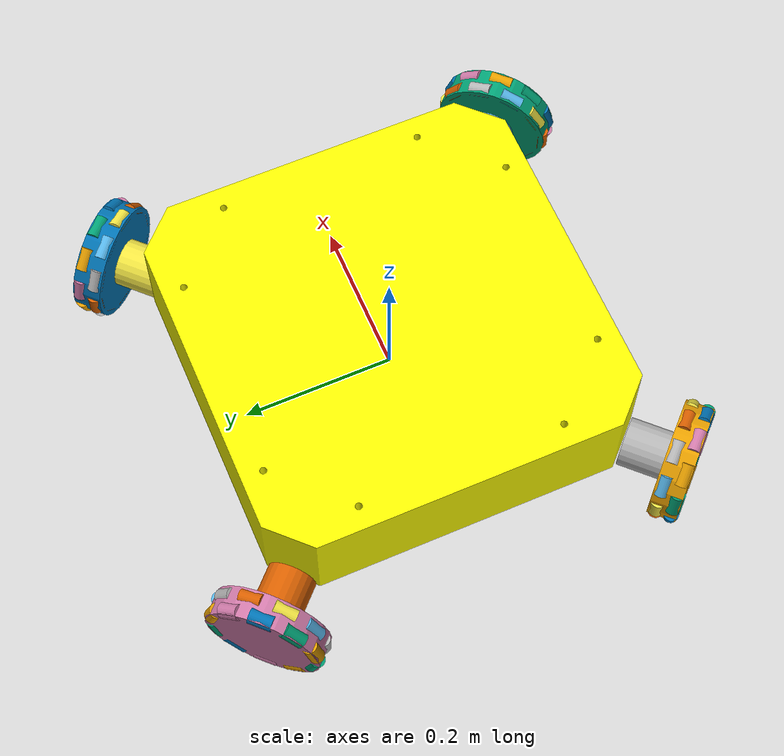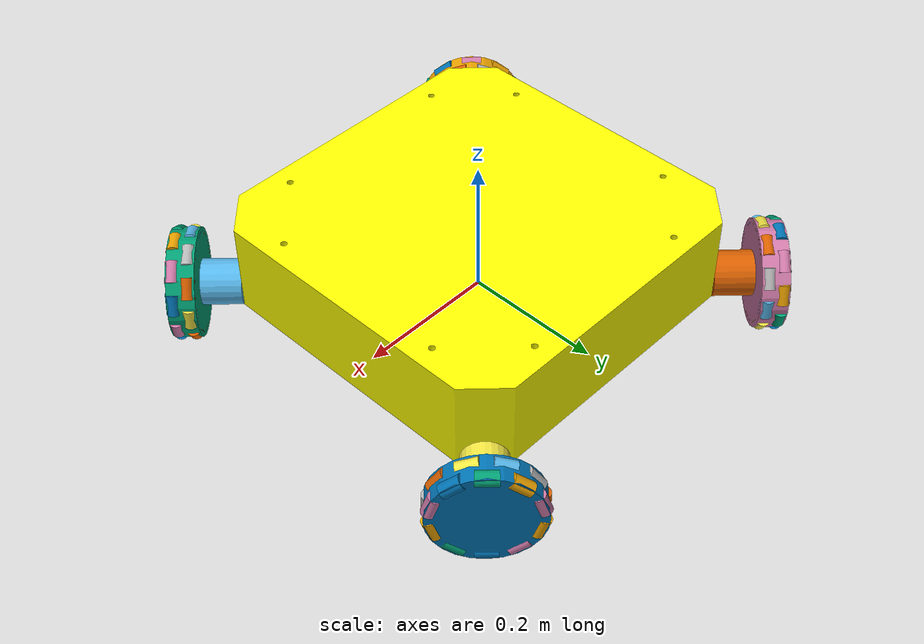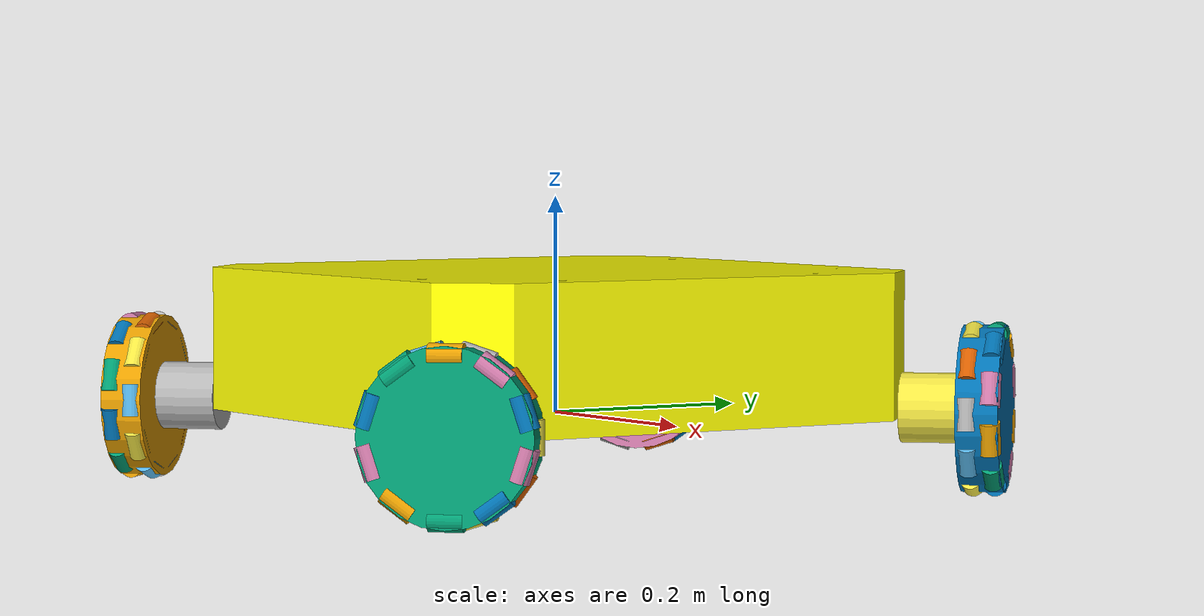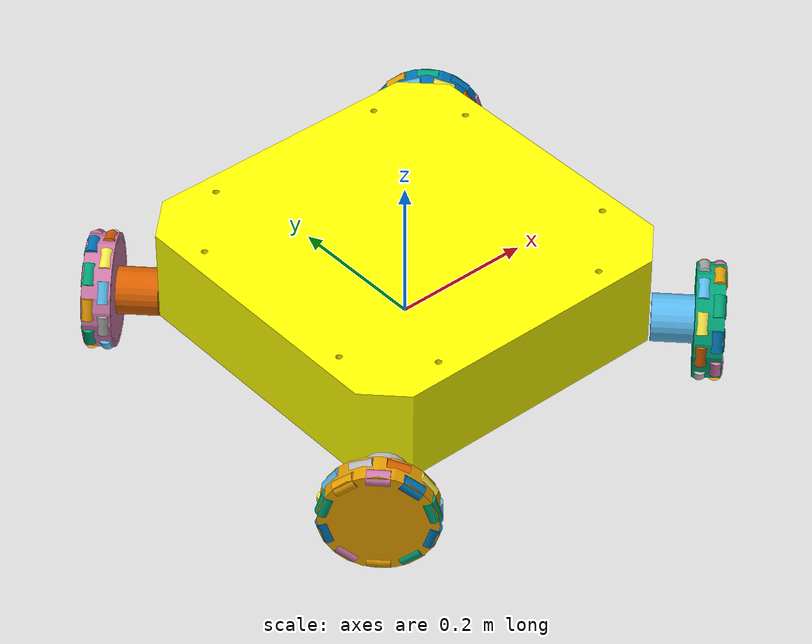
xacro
<?xml version='1.0'?>
<robot name="roam_base_gazebo" xmlns:xacro="http://www.ros.org/wiki/xacro">

  <!-- Robot -->
  <xacro:include filename="$(find roam_base_description)/model/chassis.xacro"/>

  <!-- Control -->
  <xacro:include filename="$(find roam_base_gazebo)/model/ros2_control.xacro"/>

  <!-- Cameras -->

  <!-- Arm -->

</robot>

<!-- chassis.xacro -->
<robot xmlns:xacro="http://www.ros.org/wiki/xacro">
  <xacro:include filename="$(find roam_base_description)/model/connector.xacro"/>

  <!-- World Link -->
  <link name="base_link" />
  <joint name="base_to_chassis" type="fixed">
    <parent link="base_link"/>
    <child link="chassis"/>
    <origin xyz="0 0 0" rpy="0 0 0" />
  </joint>

  <!--Base Footprint-->
  <link name="base_footprint" />
  <joint name="base_to_footprint" type="fixed">
    <parent link="base_footprint"/>
    <child link="base_link"/>
    <origin xyz="0 0 0" rpy="0 0 0" />
  </joint>

  <!-- Chassis -->
  <link name="chassis">
    <visual>
      <origin xyz="0 0 0" rpy="0 0 0" />
      <geometry>
        <mesh filename="file://$(find roam_base_description)/meshes/chassis.stl" />
      </geometry>
      <material name="">
        <color rgba="1 1 0 1" />
      </material>
    </visual>
    <inertial>
      <origin xyz="0 0 0" rpy="0 0 0" />
      <mass value="16.004"/>
      <inertia ixx="0.0001" ixy="0.0" ixz="0.0" iyy="0.0001" iyz="0.0" izz="0.0001"/>
    </inertial>

  </link>

  <gazebo reference="chassis">
    <visual>
      <material>
        <ambient>0.9 0.9 0 1</ambient>
        <diffuse>0.9 0.9 0 1</diffuse>
        <specular>0.9 0.9 0 1</specular>
      </material>
    </visual>
  </gazebo>

  <!--Wheel Rims -->
  <xacro:connector name="1" parent="chassis" xyz="0.228 0.228 0.01" rpy="1.57 0 2.3562"/>  <!--Front Left-->
  <xacro:connector name="2" parent="chassis" xyz="0.228 -0.228 0.01" rpy="1.57 0 0.7838"/> <!--Front Right-->
  <xacro:connector name="3" parent="chassis" xyz="-0.228 -0.228 0.01" rpy="1.57 0 -0.7838"/>  <!--Back Right-->
  <xacro:connector name="4" parent="chassis" xyz="-0.228 0.228 0.01" rpy="1.57 0 -2.3562"/> <!--Back Left -->

</robot>

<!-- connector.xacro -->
<robot xmlns:xacro="http://www.ros.org/wiki/xacro">
<xacro:include filename="$(find roam_base_description)/model/rim.xacro"/>
<xacro:macro name="connector" params="name parent xyz rpy">
  <link name="C${name}">
    <inertial>
      <origin xyz="0 0 0.0286" rpy="0 0 0" />
      <mass value="0.092"/>
      <inertia ixx="4.8343e-05" ixy="0.0" ixz="0.0" iyy="4.8343e-05" iyz="0.0" izz="4.6517e-05"/>
    </inertial>

    <visual>
      <origin xyz="0 0 0.0286" rpy="0 0 0" />
      <geometry>
        <cylinder radius="0.0318" length="0.0572"/>
      </geometry>
    </visual>

  </link>

  <joint name="${parent}_C${name}_joint" type="continuous">
    <parent link="${parent}"/>
    <child link="C${name}"/>
    <origin xyz = "${xyz}" rpy = "${rpy}"/>
    <axis xyz = "0 0 1"/>
  </joint>

  <!-- Wheel Rims -->
  <xacro:rim name="wheel_${name}" parent="C${name}" xyz="0 0 0.0572" rpy="0 0 0"/>

  <gazebo reference="C${name}">
    <visual>
      <material>
        <ambient>0.7 0.7 0.7 1</ambient>
        <diffuse>0.7 0.7 0.7 1</diffuse>
        <specular>0.7 0.7 0.7 1</specular>
      </material>
    </visual>
  </gazebo>

</xacro:macro>
</robot>

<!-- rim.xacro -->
<robot xmlns:xacro="http://www.ros.org/wiki/xacro">
<xacro:include filename="$(find roam_base_description)/model/roller.xacro"/>
<xacro:macro name="rim" params="name parent xyz rpy">
  <link name="rim_${name}_link">
    <inertial>
      <origin xyz="0 0 0.0182" rpy="0 0 0" />
      <mass value="0.20"/>
      <inertia ixx="6.3068e-04" ixy="0.0" ixz="0.0" iyy="6.3068e-04" iyz="0.0" izz="0.0012"/>
    </inertial>

    <visual>
      <origin xyz="0 0 0.0182" rpy="0 0 0" />
      <geometry>
        <cylinder radius="0.076" length="0.0381"/>
      </geometry>
    </visual>

  </link>

  <joint name="${parent}_rim_${name}_joint" type="fixed">
    <parent link="${parent}"/>
    <child link="rim_${name}_link"/>
    <axis xyz = "0 0 1"/>
    <origin xyz = "${xyz}" rpy = "${rpy}"/>
  </joint>

<xacro:roller name="1" parent="${name}"  xyz="0.068 0 0.0091" rpy="1.57 0 0"/>
<xacro:roller name="2" parent="${name}"  xyz="0.0647 0.021 0.0291" rpy="1.57 0 0.3142"/>
<xacro:roller name="3" parent="${name}"  xyz="0.055 0.04 0.0091" rpy="1.57 0 0.6283"/>
<xacro:roller name="4" parent="${name}"  xyz="0.04 0.055 0.0291" rpy="1.57 0 0.9425"/>
<xacro:roller name="5" parent="${name}"  xyz="0.021 0.0647 0.0091" rpy="1.57 0 1.2566"/>
<xacro:roller name="6" parent="${name}"  xyz="0 0.068 0.0291" rpy="1.57 0 1.5708"/>
<xacro:roller name="7" parent="${name}"  xyz="-0.021 0.0647 0.0091" rpy="1.57 0 1.8850"/>
<xacro:roller name="8" parent="${name}"  xyz="-0.04 0.055 0.0291" rpy="1.57 0 2.1991"/>
<xacro:roller name="9" parent="${name}"  xyz="-0.055 0.04 0.0091" rpy="1.57 0 2.5133"/>
<xacro:roller name="10" parent="${name}"  xyz="-0.0647 0.021 0.0291" rpy="1.57 0 2.8274"/>
<xacro:roller name="11" parent="${name}"  xyz="-0.068 0 0.0091" rpy="1.57 0 3.1416"/>
<xacro:roller name="12" parent="${name}"  xyz="-0.0647 -0.021 0.0291" rpy="1.57 0 3.4558"/>
<xacro:roller name="13" parent="${name}"  xyz="-0.055 -0.04 0.0091" rpy="1.57 0 3.7699"/>
<xacro:roller name="14" parent="${name}"  xyz="-0.04 -0.055 0.0291" rpy="1.57 0 4.0841"/>
<xacro:roller name="15" parent="${name}"  xyz="-0.021 -0.0647 0.0091" rpy="1.57 0 4.3982"/>
<xacro:roller name="16" parent="${name}"  xyz="0 -0.068 0.0291" rpy="1.57 0 4.7124"/>
<xacro:roller name="17" parent="${name}"  xyz="0.021 -0.0647 0.0091" rpy="1.57 0 5.0265"/>
<xacro:roller name="18" parent="${name}"  xyz="0.04 -0.055 0.0291" rpy="1.57 0 5.3407"/>
<xacro:roller name="19" parent="${name}"  xyz="0.055 -0.04 0.0091" rpy="1.57 0 5.6549"/>
<xacro:roller name="20" parent="${name}"  xyz="0.0647 -0.021 0.0291" rpy="1.57 0 5.9690"/>

<gazebo reference="rim_${name}_link">
  <visual>
    <material>
      <ambient>0.2 0.2 0.2 1</ambient>
      <diffuse>0.2 0.2 0.2 1</diffuse>
      <specular>0.2 0.2 0.2 1</specular>
    </material>
  </visual>
</gazebo>

</xacro:macro>
</robot>

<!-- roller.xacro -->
<robot xmlns:xacro="http://www.ros.org/wiki/xacro">
  <xacro:macro name="roller" params="name parent xyz rpy">
  <link name="roller_${name}_rim_${parent}_link">
    <inertial>
      <origin xyz="0 0 0" rpy="0 0 0" />
      <inertia ixx="1e-6" ixy="0.0" ixz="0.0" iyy="1e-6" iyz="0.0" izz="1e-6"/>
      <mass value="0.01"/>
    </inertial>
    <visual>
      <origin xyz="0 0 0" rpy="0 0 0" />
      <geometry>
        <cylinder radius="0.01" length="0.03"/>
      </geometry>
    </visual>

    <collision>
      <origin xyz="0 0 0" rpy="0 0 0" />
      <geometry>
        <cylinder radius="0.01" length="0.03"/>
      </geometry>
    </collision>
  </link>

  <joint name="roller_${name}_rim_${parent}_joint" type="continuous">
    <parent link="rim_${parent}_link"/>
    <child link="roller_${name}_rim_${parent}_link"/>
    <axis xyz="0 0 1"/>
    <origin xyz="${xyz}" rpy="${rpy}"/>
  </joint>

  <gazebo reference="roller_${name}_rim_${parent}_link">
    <mu1 value="100"/>
    <mu2 value="100"/>
    <visual>
      <material>
        <ambient>0.6 0.6 0.6 1</ambient>
        <diffuse>0.6 0.6 0.6 1</diffuse>
        <specular>0.6 0.6 0.6 1</specular>
      </material>
    </visual>
  </gazebo>

  </xacro:macro>

</robot>
